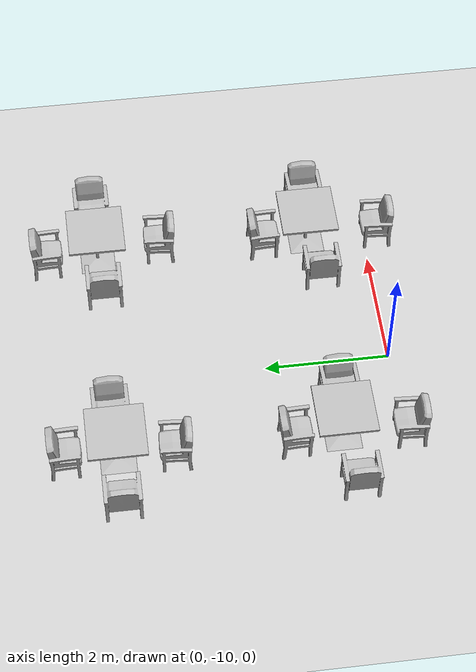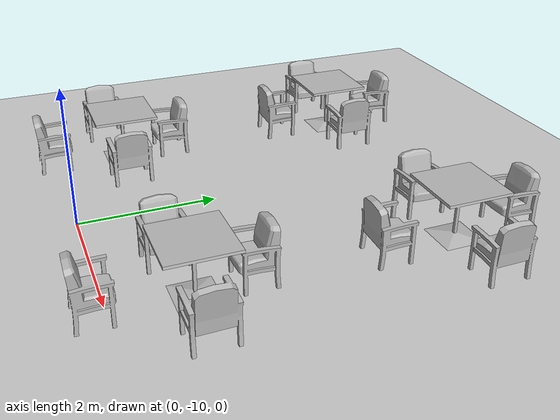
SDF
<sdf version="1.7">
 <world name="default">
  <light name="sun" type="directional">
   <pose>0 0 10 0 -0 0</pose>
   <diffuse>0.8 0.8 0.8 1</diffuse>
   <specular>0.2 0.2 0.2 1</specular>
   <attenuation>
    <range>1000</range>
    <constant>0.9</constant>
    <linear>0.01</linear>
    <quadratic>0.001</quadratic>
   </attenuation>
   <direction>0 0.5 -0.9</direction>
   <spot><inner_angle>0</inner_angle><outer_angle>0</outer_angle><falloff>0</falloff></spot>
  </light>
  <light name="point_light" type="point">
   <pose>0 -0.377195 6.59868 0 -0 0</pose>
   <diffuse>0.784314 0.784314 0.784314 1</diffuse>
   <specular>0.0980392 0.0980392 0.0980392 1</specular>
   <attenuation>
    <range>50</range>
    <constant>0.8</constant>
    <linear>0</linear>
    <quadratic>0.001</quadratic>
   </attenuation>
   <cast_shadows>0</cast_shadows>
   <direction>0 0 -1</direction>
   <spot><inner_angle>0</inner_angle><outer_angle>0</outer_angle><falloff>0</falloff></spot>
  </light>
  <model name="ground_plane">
   <static>1</static>
   <link name="link">
    <collision name="collision">
     <geometry><plane><normal>0 0 1</normal><size>100 100</size></plane></geometry>
     <surface><friction><ode><mu>100</mu><mu2>50</mu2></ode></friction></surface>
    </collision>
    <visual name="visual">
     <cast_shadows>0</cast_shadows>
     <geometry><plane><normal>0 0 1</normal><size>100 100</size></plane></geometry>
     <material>
      <script><uri>file://media/materials/scripts/gazebo.material</uri><name>Gazebo/Grey</name></script>
     </material>
    </visual>
   </link>
  </model>
  <model name="table2">
   <static>1</static>
   <link name="link">
    <collision name="surface">
     <pose>0 0 0.755 0 -0 0</pose>
     <geometry><box><size>0.913 0.913 0.04</size></box></geometry>
    </collision>
    <collision name="column">
     <pose>0 0 0.37 0 -0 0</pose>
     <geometry><box><size>0.042 0.042 0.74</size></box></geometry>
    </collision>
    <collision name="base">
     <pose>0 0 0.02 0 -0 0</pose>
     <geometry><box><size>0.56 0.56 0.04</size></box></geometry>
    </collision>
    <visual name="visual">
     <geometry><mesh><uri>model://cafe_table/meshes/cafe_table.dae</uri></mesh></geometry>
    </visual>
   </link>
   <pose>2.4 -5.5 0.2 0 -0 0</pose>
  </model>
  <model name="table3">
   <static>1</static>
   <link name="link">
    <collision name="surface">
     <pose>0 0 0.755 0 -0 0</pose>
     <geometry><box><size>0.913 0.913 0.04</size></box></geometry>
    </collision>
    <collision name="column">
     <pose>0 0 0.37 0 -0 0</pose>
     <geometry><box><size>0.042 0.042 0.74</size></box></geometry>
    </collision>
    <collision name="base">
     <pose>0 0 0.02 0 -0 0</pose>
     <geometry><box><size>0.56 0.56 0.04</size></box></geometry>
    </collision>
    <visual name="visual">
     <geometry><mesh><uri>model://cafe_table/meshes/cafe_table.dae</uri></mesh></geometry>
    </visual>
   </link>
   <pose>-1.5 -5.5 0.2 0 -0 0</pose>
  </model>
  <model name="table4">
   <static>1</static>
   <link name="link">
    <collision name="surface">
     <pose>0 0 0.755 0 -0 0</pose>
     <geometry><box><size>0.913 0.913 0.04</size></box></geometry>
    </collision>
    <collision name="column">
     <pose>0 0 0.37 0 -0 0</pose>
     <geometry><box><size>0.042 0.042 0.74</size></box></geometry>
    </collision>
    <collision name="base">
     <pose>0 0 0.02 0 -0 0</pose>
     <geometry><box><size>0.56 0.56 0.04</size></box></geometry>
    </collision>
    <visual name="visual">
     <geometry><mesh><uri>model://cafe_table/meshes/cafe_table.dae</uri></mesh></geometry>
    </visual>
   </link>
   <pose>2.4 -9 0.2 0 -0 0</pose>
  </model>
  <model name="table5">
   <static>1</static>
   <link name="link">
    <collision name="surface">
     <pose>0 0 0.755 0 -0 0</pose>
     <geometry><box><size>0.913 0.913 0.04</size></box></geometry>
    </collision>
    <collision name="column">
     <pose>0 0 0.37 0 -0 0</pose>
     <geometry><box><size>0.042 0.042 0.74</size></box></geometry>
    </collision>
    <collision name="base">
     <pose>0 0 0.02 0 -0 0</pose>
     <geometry><box><size>0.56 0.56 0.04</size></box></geometry>
    </collision>
    <visual name="visual">
     <geometry><mesh><uri>model://cafe_table/meshes/cafe_table.dae</uri></mesh></geometry>
    </visual>
   </link>
   <pose>-1.5 -9 0.2 0 -0 0</pose>
  </model>
  <gravity>0 0 -9.8</gravity>
  <magnetic_field>6e-06 2.3e-05 -4.2e-05</magnetic_field>
  <atmosphere type="adiabatic"/>
  <physics type="ode">
   <max_step_size>0.001</max_step_size>
   <real_time_factor>1</real_time_factor>
   <real_time_update_rate>1000</real_time_update_rate>
  </physics>
  <scene><ambient>0.4 0.4 0.4 1</ambient><background>0.7 0.7 0.7 1</background><shadows>1</shadows></scene>
  <spherical_coordinates>
   <surface_model>EARTH_WGS84</surface_model>
   <latitude_deg>0</latitude_deg>
   <longitude_deg>0</longitude_deg>
   <elevation>0</elevation>
   <heading_deg>0</heading_deg>
  </spherical_coordinates>
  <model name="Chair_1_clone">
   <link name="body">
    <pose>0 0 0 0 -0 1.5708</pose>
    <visual name="visual">
     <geometry>
      <mesh><uri>model://Chair/meshes/Chair.obj</uri><scale>0.00817 0.00817 0.00817</scale></mesh>
     </geometry>
    </visual>
    <collision name="collision">
     <geometry>
      <mesh><uri>model://Chair/meshes/Chair.obj</uri><scale>0.00817 0.00817 0.00817</scale></mesh>
     </geometry>
    </collision>
    <inertial>
     <inertia><ixx>1</ixx><ixy>0</ixy><ixz>0</ixz><iyy>1</iyy><iyz>0</iyz><izz>1</izz></inertia>
     <mass>1</mass>
    </inertial>
   </link>
   <pose>2.47214 -6.49887 0.189802 9e-06 -2e-06 1.54101</pose>
  </model>
  <model name="Chair_1_clone_0">
   <link name="body">
    <pose>0 0 0 0 -0 1.5708</pose>
    <visual name="visual">
     <geometry>
      <mesh><uri>model://Chair/meshes/Chair.obj</uri><scale>0.00817 0.00817 0.00817</scale></mesh>
     </geometry>
    </visual>
    <collision name="collision">
     <geometry>
      <mesh><uri>model://Chair/meshes/Chair.obj</uri><scale>0.00817 0.00817 0.00817</scale></mesh>
     </geometry>
    </collision>
    <inertial>
     <inertia><ixx>1</ixx><ixy>0</ixy><ixz>0</ixz><iyy>1</iyy><iyz>0</iyz><izz>1</izz></inertia>
     <mass>1</mass>
    </inertial>
   </link>
   <pose>2.37452 -10.1282 0.189803 9e-06 -3e-06 1.54101</pose>
  </model>
  <model name="Chair_1_clone_1">
   <link name="body">
    <pose>0 0 0 0 -0 1.5708</pose>
    <visual name="visual">
     <geometry>
      <mesh><uri>model://Chair/meshes/Chair.obj</uri><scale>0.00817 0.00817 0.00817</scale></mesh>
     </geometry>
    </visual>
    <collision name="collision">
     <geometry>
      <mesh><uri>model://Chair/meshes/Chair.obj</uri><scale>0.00817 0.00817 0.00817</scale></mesh>
     </geometry>
    </collision>
    <inertial>
     <inertia><ixx>1</ixx><ixy>0</ixy><ixz>0</ixz><iyy>1</iyy><iyz>0</iyz><izz>1</izz></inertia>
     <mass>1</mass>
    </inertial>
   </link>
   <pose>-1.57865 -10.0017 0.189803 7e-06 4e-06 1.54101</pose>
  </model>
  <model name="Chair_1_clone_2">
   <link name="body">
    <pose>0 0 0 0 -0 1.5708</pose>
    <visual name="visual">
     <geometry>
      <mesh><uri>model://Chair/meshes/Chair.obj</uri><scale>0.00817 0.00817 0.00817</scale></mesh>
     </geometry>
    </visual>
    <collision name="collision">
     <geometry>
      <mesh><uri>model://Chair/meshes/Chair.obj</uri><scale>0.00817 0.00817 0.00817</scale></mesh>
     </geometry>
    </collision>
    <inertial>
     <inertia><ixx>1</ixx><ixy>0</ixy><ixz>0</ixz><iyy>1</iyy><iyz>0</iyz><izz>1</izz></inertia>
     <mass>1</mass>
    </inertial>
   </link>
   <pose>-1.55973 -6.35359 0.18979 -5e-06 2e-06 1.54101</pose>
  </model>
  <model name="Chair_2_clone">
   <link name="body">
    <pose>0 0 0 0 -0 1.5708</pose>
    <visual name="visual">
     <geometry>
      <mesh><uri>model://Chair/meshes/Chair.obj</uri><scale>0.00817 0.00817 0.00817</scale></mesh>
     </geometry>
    </visual>
    <collision name="collision">
     <geometry>
      <mesh><uri>model://Chair/meshes/Chair.obj</uri><scale>0.00817 0.00817 0.00817</scale></mesh>
     </geometry>
    </collision>
    <inertial>
     <inertia><ixx>1</ixx><ixy>0</ixy><ixz>0</ixz><iyy>1</iyy><iyz>0</iyz><izz>1</izz></inertia>
     <mass>1</mass>
    </inertial>
   </link>
   <pose>3.25738 -5.47801 0.189804 1.3e-05 -0 -3.13128</pose>
  </model>
  <model name="Chair_2_clone_0">
   <link name="body">
    <pose>0 0 0 0 -0 1.5708</pose>
    <visual name="visual">
     <geometry>
      <mesh><uri>model://Chair/meshes/Chair.obj</uri><scale>0.00817 0.00817 0.00817</scale></mesh>
     </geometry>
    </visual>
    <collision name="collision">
     <geometry>
      <mesh><uri>model://Chair/meshes/Chair.obj</uri><scale>0.00817 0.00817 0.00817</scale></mesh>
     </geometry>
    </collision>
    <inertial>
     <inertia><ixx>1</ixx><ixy>0</ixy><ixz>0</ixz><iyy>1</iyy><iyz>0</iyz><izz>1</izz></inertia>
     <mass>1</mass>
    </inertial>
   </link>
   <pose>3.16207 -9.06514 0.189805 1.7e-05 -0 -3.13128</pose>
  </model>
  <model name="Chair_2_clone_1">
   <link name="body">
    <pose>0 0 0 0 -0 1.5708</pose>
    <visual name="visual">
     <geometry>
      <mesh><uri>model://Chair/meshes/Chair.obj</uri><scale>0.00817 0.00817 0.00817</scale></mesh>
     </geometry>
    </visual>
    <collision name="collision">
     <geometry>
      <mesh><uri>model://Chair/meshes/Chair.obj</uri><scale>0.00817 0.00817 0.00817</scale></mesh>
     </geometry>
    </collision>
    <inertial>
     <inertia><ixx>1</ixx><ixy>0</ixy><ixz>0</ixz><iyy>1</iyy><iyz>0</iyz><izz>1</izz></inertia>
     <mass>1</mass>
    </inertial>
   </link>
   <pose>-0.787651 -5.46352 0.189801 -0 -2e-06 -3.13128</pose>
  </model>
  <model name="Chair_2_clone_2">
   <link name="body">
    <pose>0 0 0 0 -0 1.5708</pose>
    <visual name="visual">
     <geometry>
      <mesh><uri>model://Chair/meshes/Chair.obj</uri><scale>0.00817 0.00817 0.00817</scale></mesh>
     </geometry>
    </visual>
    <collision name="collision">
     <geometry>
      <mesh><uri>model://Chair/meshes/Chair.obj</uri><scale>0.00817 0.00817 0.00817</scale></mesh>
     </geometry>
    </collision>
    <inertial>
     <inertia><ixx>1</ixx><ixy>0</ixy><ixz>0</ixz><iyy>1</iyy><iyz>0</iyz><izz>1</izz></inertia>
     <mass>1</mass>
    </inertial>
   </link>
   <pose>-0.801213 -9.04875 0.1898 -1e-06 0 -3.13128</pose>
  </model>
  <model name="Chair_0_clone">
   <link name="body">
    <pose>0 0 0 0 -0 1.5708</pose>
    <visual name="visual">
     <geometry>
      <mesh><uri>model://Chair/meshes/Chair.obj</uri><scale>0.00817 0.00817 0.00817</scale></mesh>
     </geometry>
    </visual>
    <collision name="collision">
     <geometry>
      <mesh><uri>model://Chair/meshes/Chair.obj</uri><scale>0.00817 0.00817 0.00817</scale></mesh>
     </geometry>
    </collision>
    <inertial>
     <inertia><ixx>1</ixx><ixy>0</ixy><ixz>0</ixz><iyy>1</iyy><iyz>0</iyz><izz>1</izz></inertia>
     <mass>1</mass>
    </inertial>
   </link>
   <pose>2.36102 -4.70864 0.189796 -1.1e-05 1e-06 -1.56445</pose>
  </model>
  <model name="Chair_0_clone_0">
   <link name="body">
    <pose>0 0 0 0 -0 1.5708</pose>
    <visual name="visual">
     <geometry>
      <mesh><uri>model://Chair/meshes/Chair.obj</uri><scale>0.00817 0.00817 0.00817</scale></mesh>
     </geometry>
    </visual>
    <collision name="collision">
     <geometry>
      <mesh><uri>model://Chair/meshes/Chair.obj</uri><scale>0.00817 0.00817 0.00817</scale></mesh>
     </geometry>
    </collision>
    <inertial>
     <inertia><ixx>1</ixx><ixy>0</ixy><ixz>0</ixz><iyy>1</iyy><iyz>0</iyz><izz>1</izz></inertia>
     <mass>1</mass>
    </inertial>
   </link>
   <pose>2.35389 -8.30706 0.189803 1e-05 -1e-06 -1.56445</pose>
  </model>
  <model name="Chair_0_clone_1">
   <link name="body">
    <pose>0 0 0 0 -0 1.5708</pose>
    <visual name="visual">
     <geometry>
      <mesh><uri>model://Chair/meshes/Chair.obj</uri><scale>0.00817 0.00817 0.00817</scale></mesh>
     </geometry>
    </visual>
    <collision name="collision">
     <geometry>
      <mesh><uri>model://Chair/meshes/Chair.obj</uri><scale>0.00817 0.00817 0.00817</scale></mesh>
     </geometry>
    </collision>
    <inertial>
     <inertia><ixx>1</ixx><ixy>0</ixy><ixz>0</ixz><iyy>1</iyy><iyz>0</iyz><izz>1</izz></inertia>
     <mass>1</mass>
    </inertial>
   </link>
   <pose>-1.5007 -4.73626 0.189792 -1e-06 4e-06 -1.56445</pose>
  </model>
  <model name="Chair_0_clone_2">
   <link name="body">
    <pose>0 0 0 0 -0 1.5708</pose>
    <visual name="visual">
     <geometry>
      <mesh><uri>model://Chair/meshes/Chair.obj</uri><scale>0.00817 0.00817 0.00817</scale></mesh>
     </geometry>
    </visual>
    <collision name="collision">
     <geometry>
      <mesh><uri>model://Chair/meshes/Chair.obj</uri><scale>0.00817 0.00817 0.00817</scale></mesh>
     </geometry>
    </collision>
    <inertial>
     <inertia><ixx>1</ixx><ixy>0</ixy><ixz>0</ixz><iyy>1</iyy><iyz>0</iyz><izz>1</izz></inertia>
     <mass>1</mass>
    </inertial>
   </link>
   <pose>-1.54609 -8.29018 0.189799 -3e-06 8e-06 -1.56445</pose>
  </model>
  <model name="Chair_clone">
   <link name="body">
    <pose>0 0 0 0 -0 1.5708</pose>
    <visual name="visual">
     <geometry>
      <mesh><uri>model://Chair/meshes/Chair.obj</uri><scale>0.00817 0.00817 0.00817</scale></mesh>
     </geometry>
    </visual>
    <collision name="collision">
     <geometry>
      <mesh><uri>model://Chair/meshes/Chair.obj</uri><scale>0.00817 0.00817 0.00817</scale></mesh>
     </geometry>
    </collision>
    <inertial>
     <inertia><ixx>1</ixx><ixy>0</ixy><ixz>0</ixz><iyy>1</iyy><iyz>0</iyz><izz>1</izz></inertia>
     <mass>1</mass>
    </inertial>
   </link>
   <pose>-2.32139 -5.51336 0.189802 3e-06 -5e-06 -0.0022</pose>
  </model>
  <model name="Chair_clone_0">
   <link name="body">
    <pose>0 0 0 0 -0 1.5708</pose>
    <visual name="visual">
     <geometry>
      <mesh><uri>model://Chair/meshes/Chair.obj</uri><scale>0.00817 0.00817 0.00817</scale></mesh>
     </geometry>
    </visual>
    <collision name="collision">
     <geometry>
      <mesh><uri>model://Chair/meshes/Chair.obj</uri><scale>0.00817 0.00817 0.00817</scale></mesh>
     </geometry>
    </collision>
    <inertial>
     <inertia><ixx>1</ixx><ixy>0</ixy><ixz>0</ixz><iyy>1</iyy><iyz>0</iyz><izz>1</izz></inertia>
     <mass>1</mass>
    </inertial>
   </link>
   <pose>1.64774 -5.56016 0.189792 0 -4e-06 -0.0022</pose>
  </model>
  <model name="Chair_clone_1">
   <link name="body">
    <pose>0 0 0 0 -0 1.5708</pose>
    <visual name="visual">
     <geometry>
      <mesh><uri>model://Chair/meshes/Chair.obj</uri><scale>0.00817 0.00817 0.00817</scale></mesh>
     </geometry>
    </visual>
    <collision name="collision">
     <geometry>
      <mesh><uri>model://Chair/meshes/Chair.obj</uri><scale>0.00817 0.00817 0.00817</scale></mesh>
     </geometry>
    </collision>
    <inertial>
     <inertia><ixx>1</ixx><ixy>0</ixy><ixz>0</ixz><iyy>1</iyy><iyz>0</iyz><izz>1</izz></inertia>
     <mass>1</mass>
    </inertial>
   </link>
   <pose>1.62781 -9.1397 0.189807 1.9e-05 1e-05 -0.0022</pose>
  </model>
  <model name="Chair_clone_2">
   <link name="body">
    <pose>0 0 0 0 -0 1.5708</pose>
    <visual name="visual">
     <geometry>
      <mesh><uri>model://Chair/meshes/Chair.obj</uri><scale>0.00817 0.00817 0.00817</scale></mesh>
     </geometry>
    </visual>
    <collision name="collision">
     <geometry>
      <mesh><uri>model://Chair/meshes/Chair.obj</uri><scale>0.00817 0.00817 0.00817</scale></mesh>
     </geometry>
    </collision>
    <inertial>
     <inertia><ixx>1</ixx><ixy>0</ixy><ixz>0</ixz><iyy>1</iyy><iyz>0</iyz><izz>1</izz></inertia>
     <mass>1</mass>
    </inertial>
   </link>
   <pose>-2.38487 -9.13017 0.189797 1.3e-05 1.6e-05 -0.0022</pose>
  </model>
 </world>
</sdf>
